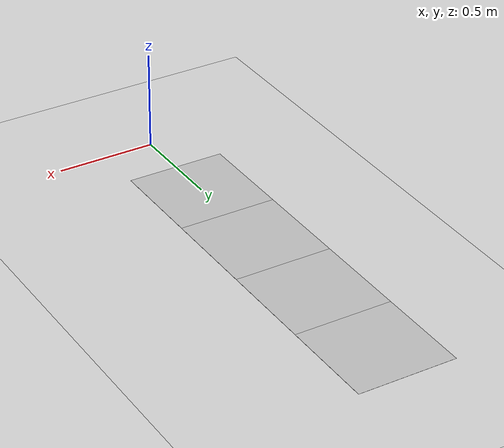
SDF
<sdf version="1.5">
 <world name="chapter3">
  <include><uri>model://sun</uri></include>
  <include><uri>model://ground_plane</uri></include>
  <include><pose>0 0.5 0 0 0 0</pose><uri>model://concrete_slab_small</uri></include>
  <include><pose>0 1.0 0 0 0 0</pose><uri>model://concrete_slab_small</uri></include>
  <include><pose>0 1.5 0 0 0 0</pose><uri>model://concrete_slab_small</uri></include>
  <include><pose>0 2.0 0 0 0 0</pose><uri>model://concrete_slab_small</uri></include>
  <plugin name="SimEvents" filename="libSimEventsPlugin.so">
   <region><name>slab_0</name><volume><min>-0.5 0.5  0</min><max>0.5 1.0 10</max></volume></region>
   <region><name>slab_1</name><volume><min>-0.5 1.0  0</min><max>0.5 1.5 10</max></volume></region>
   <region><name>slab_2</name><volume><min>-0.5 1.5  0</min><max>0.5 2.0 10</max></volume></region>
   <region><name>slab_3</name><volume><min>-0.5 2.0  0</min><max>0.5 2.5 10</max></volume></region>
   <region><name>slab_4</name><volume><min>-1.0 3.75 0</min><max>1.0 4.25 10</max></volume></region>
   <event><name>state</name><type>sim_state</type></event>
   <event><name>existence</name><type>existence</type></event>
   <event><name>on_slab_0</name><type>inclusion</type><model>vehicle</model><region>slab_0</region></event>
   <event><name>on_slab_1</name><type>inclusion</type><model>vehicle</model><region>slab_1</region></event>
   <event><name>on_slab_2</name><type>inclusion</type><model>vehicle</model><region>slab_2</region></event>
   <event><name>on_slab_3</name><type>inclusion</type><model>vehicle</model><region>slab_3</region></event>
   <event><name>on_slab_4</name><type>inclusion</type><model>vehicle</model><region>slab_4</region></event>
   <event>
    <name>joint_velocity</name>
    <type>joint</type>
    <model>motor</model>
    <joint>motor_shaft_joint</joint>
    <range><type>velocity</type><min>0.5</min><max>1000000</max></range>
   </event>
  </plugin>
 </world>
</sdf>

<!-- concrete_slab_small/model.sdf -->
<sdf version="1.5">
  <model name="concrete_slab_small">
    <static>true</static>

    <link name="slab">
      <pose>0 0 0.0001 0 0 0</pose>
      <collision name="collision">
        <geometry>
          <plane>
            <normal>0 0 1</normal>
            <size>0.5 0.5</size>
          </plane>
        </geometry>
        <surface>
          <friction>
            <ode>
              <mu>100</mu>
              <mu2>50</mu2>
            </ode>
          </friction>
        </surface>
      </collision>

      <visual name="concrete">
        <cast_shadows>false</cast_shadows>
        <geometry>
          <plane>
            <normal>0 0 1</normal>
            <size>0.5 0.5</size>
          </plane>
        </geometry>
        <material>
          <script>
            <uri>model://concrete_slab/materials/scripts/</uri>
            <uri>model://concrete_slab/materials/textures/</uri>
            <name>Mentor2/ConcreteSlab</name>
          </script>
        </material>
      </visual>
    </link>
  </model>
</sdf>
